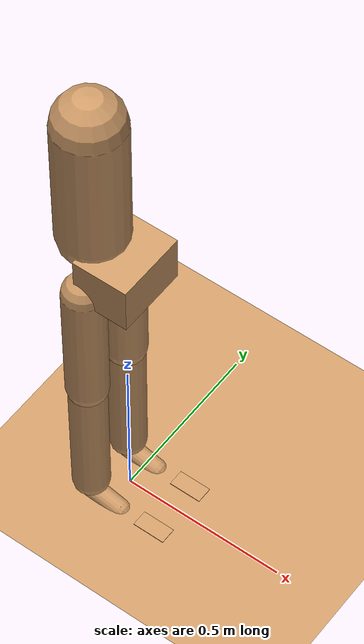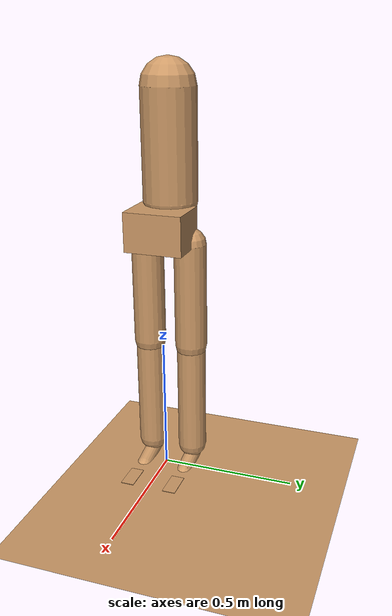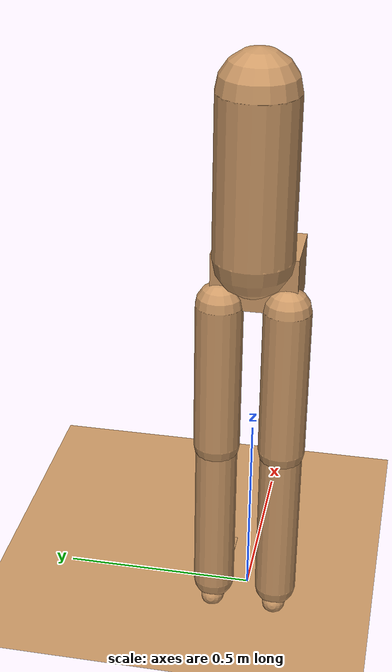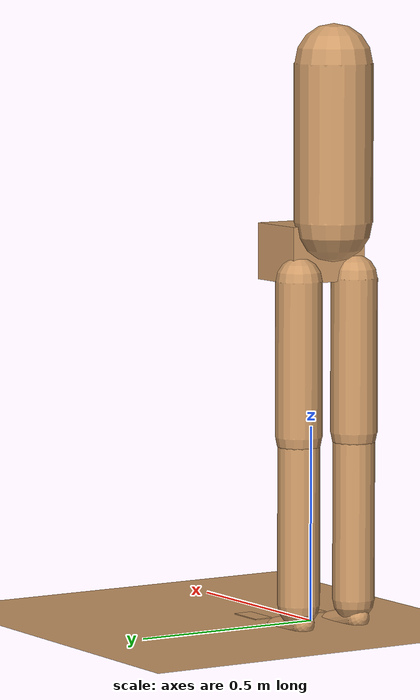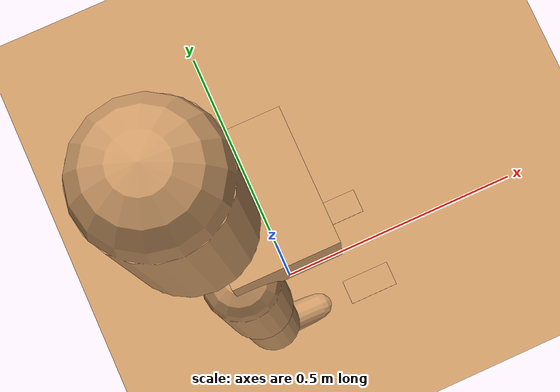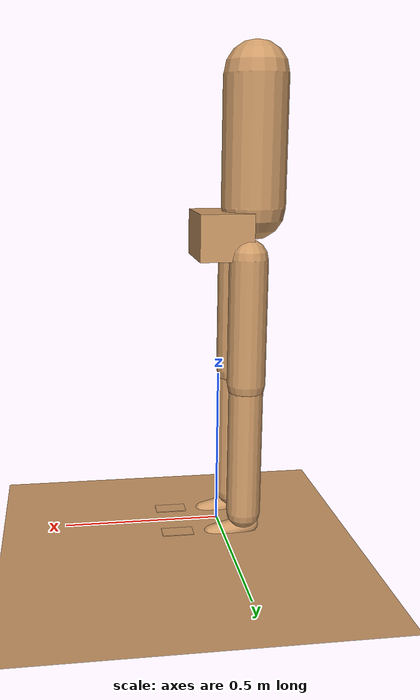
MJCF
<?xml version="1.0" ?>
<mujoco model="gait2354_simplified">
  <compiler angle="radian" coordinate="local" inertiafromgeom="auto"/>

  <default>
    <joint limited="true" damping="5.0" armature="0.01" stiffness="0"/>
    <geom conaffinity="1" condim="3" contype="1" margin="0.001" rgba="0.8 0.6 0.4 1" density="1000"/>
  </default>

  <asset>
    <texture type="skybox" builtin="gradient" rgb1=".4 .5 .6" rgb2="0 0 0" width="100" height="100"/>
    <texture builtin="flat" height="1278" mark="cross" markrgb="1 1 1" name="texgeom" random="0.01" rgb1="0.8 0.6 0.4" rgb2="0.8 0.6 0.4" type="cube" width="127"/>
    <texture builtin="checker" height="100" name="texplane" rgb1="0 0 0" rgb2="0.8 0.8 0.8" type="2d" width="100"/>
    <material name="MatPlane" reflectance="0.5" shininess="1" specular="1" texrepeat="60 60" texture="texplane"/>
    <material name="geom" texture="texgeom" texuniform="true"/>
  </asset>

  <worldbody>
    <light cutoff="100" diffuse="1 1 1" dir="0 0 -1.3" directional="true" exponent="1" pos="0 0 1.3" specular=".1 .1 .1"/>
    <geom name="floor" type="plane" conaffinity="1" size="100 100 .2" material="MatPlane"/>

    <body name="pelvis" pos="0 0 0.95">
      <freejoint name="root"/>
      <inertial pos="0 0 0" mass="11.777" diaginertia="0.1028 0.0871 0.0579"/>
      <geom name="pelvis_geom" type="box" size="0.083 0.107 0.072" rgba="0.8 0.6 0.4 1"/>

      <!-- Right Leg -->
      <body name="femur_r" pos="-0.0707 -0.0835 -0.0661">
        <inertial pos="0 0 -0.17" mass="9.3014" diaginertia="0.1339 0.0351 0.1412"/>
        <joint name="hip_flexion_r" type="hinge" pos="0 0 0" axis="0 1 0" range="-2.094 2.094" stiffness="800" damping="80" armature="0.02"/>
        <joint name="hip_adduction_r" type="hinge" pos="0 0 0" axis="1 0 0" range="-2.094 2.094" stiffness="800" damping="80" armature="0.02"/>
        <joint name="hip_rotation_r" type="hinge" pos="0 0 0" axis="0 0 1" range="-2.094 2.094" stiffness="800" damping="80" armature="0.02"/>
        <geom name="femur_r_geom" type="capsule" fromto="0 0 0 0 0 -0.395" size="0.06" rgba="0.8 0.6 0.4 1"/>

        <body name="tibia_r" pos="0 0 -0.395">
          <inertial pos="0 0 -0.215" mass="3.7075" diaginertia="0.0504 0.0051 0.0511"/>
          <joint name="knee_angle_r" type="hinge" pos="0 0 0" axis="0 1 0" range="-2.094 0.1745" stiffness="800" damping="80" armature="0.02"/>
          <geom name="tibia_r_geom" type="capsule" fromto="0 0 0 0 0 -0.43" size="0.054" rgba="0.8 0.6 0.4 1"/>

          <body name="talus_r" pos="0 0 -0.43">
            <inertial pos="0 0 0" mass="0.1" diaginertia="0.001 0.001 0.001"/>
            <joint name="ankle_angle_r" type="hinge" pos="0 0 0" axis="0 1 0" range="-1.571 1.571" stiffness="800" damping="80" armature="0.02"/>

            <body name="calcn_r" pos="0 0 -0.045">
              <inertial pos="0.05 0 0" mass="1.25" diaginertia="0.0014 0.0039 0.0041"/>
              <geom name="calcn_r_geom" type="capsule" fromto="-0.02 0 0 0.1 0 -0.03" size="0.03" rgba="0.8 0.6 0.4 1"/>

              <body name="toes_r" pos="0.1793 0 -0.0282">
                <inertial pos="0.035 0 0" mass="0.2166" diaginertia="0.0001 0.0003 0.0003"/>
                <joint name="mtp_angle_r" type="hinge" pos="0 0 0" axis="0 1 0" range="-1.571 1.571" stiffness="500" damping="50" armature="0.02"/>
                <geom name="toes_r_geom" type="box" size="0.05 0.025 0.015" pos="0.035 0 0" rgba="0.8 0.6 0.4 1"/>
              </body>
            </body>
          </body>
        </body>
      </body>

      <!-- Left Leg -->
      <body name="femur_l" pos="-0.0707 0.0835 -0.0661">
        <inertial pos="0 0 -0.17" mass="9.3014" diaginertia="0.1339 0.0351 0.1412"/>
        <joint name="hip_flexion_l" type="hinge" pos="0 0 0" axis="0 1 0" range="-2.094 2.094" stiffness="800" damping="80" armature="0.02"/>
        <joint name="hip_adduction_l" type="hinge" pos="0 0 0" axis="-1 0 0" range="-2.094 2.094" stiffness="800" damping="80" armature="0.02"/>
        <joint name="hip_rotation_l" type="hinge" pos="0 0 0" axis="0 0 -1" range="-2.094 2.094" stiffness="800" damping="80" armature="0.02"/>
        <geom name="femur_l_geom" type="capsule" fromto="0 0 0 0 0 -0.395" size="0.06" rgba="0.8 0.6 0.4 1"/>

        <body name="tibia_l" pos="0 0 -0.395">
          <inertial pos="0 0 -0.215" mass="3.7075" diaginertia="0.0504 0.0051 0.0511"/>
          <joint name="knee_angle_l" type="hinge" pos="0 0 0" axis="0 1 0" range="-2.094 0.1745" stiffness="800" damping="80" armature="0.02"/>
          <geom name="tibia_l_geom" type="capsule" fromto="0 0 0 0 0 -0.43" size="0.054" rgba="0.8 0.6 0.4 1"/>

          <body name="talus_l" pos="0 0 -0.43">
            <inertial pos="0 0 0" mass="0.1" diaginertia="0.001 0.001 0.001"/>
            <joint name="ankle_angle_l" type="hinge" pos="0 0 0" axis="0 1 0" range="-1.571 1.571" stiffness="800" damping="80" armature="0.02"/>

            <body name="calcn_l" pos="0 0 -0.045">
              <inertial pos="0.05 0 0" mass="1.25" diaginertia="0.0014 0.0039 0.0041"/>
              <geom name="calcn_l_geom" type="capsule" fromto="-0.02 0 0 0.1 0 -0.03" size="0.03" rgba="0.8 0.6 0.4 1"/>

              <body name="toes_l" pos="0.1793 0 -0.0282">
                <inertial pos="0.035 0 0" mass="0.2166" diaginertia="0.0001 0.0003 0.0003"/>
                <joint name="mtp_angle_l" type="hinge" pos="0 0 0" axis="0 1 0" range="-1.571 1.571" stiffness="500" damping="50" armature="0.02"/>
                <geom name="toes_l_geom" type="box" size="0.05 0.025 0.015" pos="0.035 0 0" rgba="0.8 0.6 0.4 1"/>
              </body>
            </body>
          </body>
        </body>
      </body>

      <!-- Torso -->
      <body name="torso" pos="-0.1007 0 0.0815">
        <inertial pos="0 0 0.2" mass="34.2366" diaginertia="1.4745 0.7555 1.4314"/>
        <joint name="lumbar_extension" type="hinge" pos="0 0 0" axis="0 1 0" range="-1.571 1.571" stiffness="1000" damping="100" armature="0.02"/>
        <joint name="lumbar_bending" type="hinge" pos="0 0 0" axis="1 0 0" range="-1.571 1.571" stiffness="1000" damping="100" armature="0.02"/>
        <joint name="lumbar_rotation" type="hinge" pos="0 0 0" axis="0 0 1" range="-1.571 1.571" stiffness="1000" damping="100" armature="0.02"/>
        <geom name="torso_geom" type="capsule" fromto="0 0 0 0 0 0.4" size="0.1" rgba="0.8 0.6 0.4 1"/>
      </body>
    </body>
  </worldbody>

  <contact>
    <exclude body1="pelvis" body2="femur_r"/>
    <exclude body1="femur_r" body2="tibia_r"/>
    <exclude body1="tibia_r" body2="talus_r"/>
    <exclude body1="talus_r" body2="calcn_r"/>
    <exclude body1="calcn_r" body2="toes_r"/>
    <exclude body1="pelvis" body2="femur_l"/>
    <exclude body1="femur_l" body2="tibia_l"/>
    <exclude body1="tibia_l" body2="talus_l"/>
    <exclude body1="talus_l" body2="calcn_l"/>
    <exclude body1="calcn_l" body2="toes_l"/>
    <exclude body1="pelvis" body2="torso"/>
  </contact>
</mujoco>
